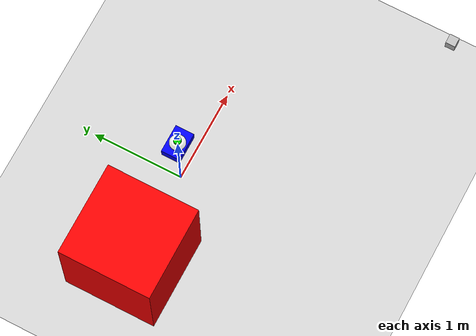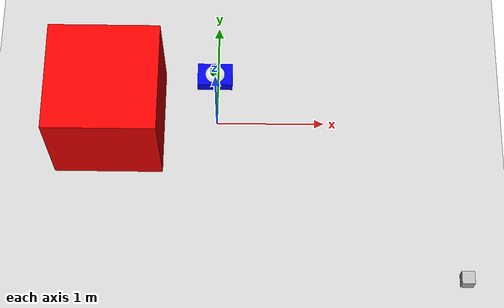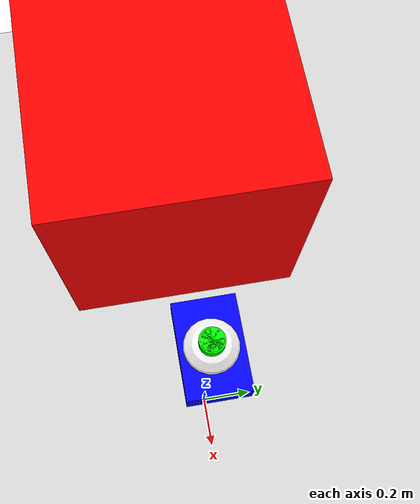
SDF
<?xml version="1.0" ?>
<sdf version="1.7">
  <world name="simple_humanoid_world">
    <!-- Include a ground plane -->
    <include>
      <uri>model://ground_plane</uri>
    </include>

    <!-- Include a sun -->
    <include>
      <uri>model://sun</uri>
    </include>

    <!-- Add physics engine -->
    <physics name="1ms" type="ode">
      <max_step_size>0.001</max_step_size>
      <real_time_factor>1.0</real_time_factor>
      <real_time_update_rate>1000.0</real_time_update_rate>
    </physics>

    <!-- Place the simple humanoid model -->
    <include>
      <name>simple_humanoid</name>
      <uri>model://simple_humanoid</uri>
      <pose>0 0 1 0 0 0</pose>
    </include>

    <!-- Add a simple camera sensor -->
    <model name="camera_sensor">
      <pose>2 -2 1.5 0 0 1.57</pose>
      <link name="camera_link">
        <pose>0.05 0 0 0 0 0</pose>
        <visual name="visual">
          <geometry>
            <box>
              <size>0.1 0.1 0.1</size>
            </box>
          </geometry>
        </visual>
        <sensor name="camera" type="camera">
          <camera name="cam">
            <horizontal_fov>1.047</horizontal_fov>
            <image>
              <width>640</width>
              <height>480</height>
            </image>
            <clip>
              <near>0.1</near>
              <far>100</far>
            </clip>
          </camera>
        </sensor>
      </link>
    </model>

    <!-- Add a simple cube for reference -->
    <model name="reference_cube">
      <pose>-1 0 0.5 0 0 0</pose>
      <link name="cube_link">
        <collision name="collision">
          <geometry>
            <box>
              <size>1 1 1</size>
            </box>
          </geometry>
        </collision>
        <visual name="visual">
          <geometry>
            <box>
              <size>1 1 1</size>
            </box>
          </geometry>
          <material>
            <ambient>1 0 0 1</ambient>
            <diffuse>1 0 0 1</diffuse>
          </material>
        </visual>
        <inertial>
          <mass>1.0</mass>
          <inertia>
            <ixx>0.166667</ixx>
            <ixy>0</ixy>
            <ixz>0</ixz>
            <iyy>0.166667</iyy>
            <iyz>0</iyz>
            <izz>0.166667</izz>
          </inertia>
        </inertial>
      </link>
    </model>

  </world>
</sdf>

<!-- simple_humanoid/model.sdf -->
<sdf version="1.7">
  <model name="simple_humanoid">
    <!-- Base Link -->
    <link name="base_link">
      <visual name="base_visual">
        <geometry>
          <box>
            <size>0.3 0.2 0.1</size>
          </box>
        </geometry>
        <material>
          <ambient>0 0 1 1</ambient>
          <diffuse>0 0 1 1</diffuse>
        </material>
      </visual>
      <collision name="base_collision">
        <geometry>
          <box>
            <size>0.3 0.2 0.1</size>
          </box>
        </geometry>
      </collision>
      <inertial>
        <mass>5.0</mass>
        <inertia>
          <ixx>0.1</ixx>
          <ixy>0.0</ixy>
          <ixz>0.0</ixz>
          <iyy>0.1</iyy>
          <iyz>0.0</iyz>
          <izz>0.1</izz>
        </inertia>
      </inertial>
    </link>

    <!-- Head -->
    <link name="head">
      <visual name="head_visual">
        <geometry>
          <sphere>
            <radius>0.1</radius>
          </sphere>
        </geometry>
        <material>
          <ambient>1 1 1 1</ambient>
          <diffuse>1 1 1 1</diffuse>
        </material>
      </visual>
      <collision name="head_collision">
        <geometry>
          <sphere>
            <radius>0.1</radius>
          </sphere>
        </geometry>
      </collision>
      <inertial>
        <mass>1.0</mass>
        <inertia>
          <ixx>0.001</ixx>
          <ixy>0.0</ixy>
          <ixz>0.0</ixz>
          <iyy>0.001</iyy>
          <iyz>0.0</iyz>
          <izz>0.001</izz>
        </inertia>
      </inertial>
    </link>

    <joint name="head_joint" type="fixed">
      <parent>base_link</parent>
      <child>head</child>
      <pose>0 0 0.15 0 0 0</pose>
    </joint>

    <!-- Left Arm -->
    <link name="left_upper_arm">
      <visual name="left_upper_arm_visual">
        <geometry>
          <cylinder>
            <length>0.2</length>
            <radius>0.03</radius>
          </cylinder>
        </geometry>
        <material>
          <ambient>1 0 0 1</ambient>
          <diffuse>1 0 0 1</diffuse>
        </material>
      </visual>
      <collision name="left_upper_arm_collision">
        <geometry>
          <cylinder>
            <length>0.2</length>
            <radius>0.03</radius>
          </cylinder>
        </geometry>
      </collision>
      <inertial>
        <mass>0.5</mass>
        <inertia>
          <ixx>0.001</ixx>
          <ixy>0.0</ixy>
          <ixz>0.0</ixz>
          <iyy>0.001</iyy>
          <iyz>0.0</iyz>
          <izz>0.001</izz>
        </inertia>
      </inertial>
    </link>

    <joint name="left_shoulder_joint" type="revolute">
      <parent>base_link</parent>
      <child>left_upper_arm</child>
      <pose>0.18 0.1 0 0 0 0</pose>
      <axis>
        <xyz>0 1 0</xyz>
        <limit>
          <lower>-1.57</lower>
          <upper>1.57</upper>
        </limit>
      </axis>
    </joint>

    <link name="left_lower_arm">
      <visual name="left_lower_arm_visual">
        <geometry>
          <cylinder>
            <length>0.15</length>
            <radius>0.025</radius>
          </cylinder>
        </geometry>
        <material>
          <ambient>1 0 0 1</ambient>
          <diffuse>1 0 0 1</diffuse>
        </material>
      </visual>
      <collision name="left_lower_arm_collision">
        <geometry>
          <cylinder>
            <length>0.15</length>
            <radius>0.025</radius>
          </cylinder>
        </geometry>
      </collision>
      <inertial>
        <mass>0.3</mass>
        <inertia>
          <ixx>0.001</ixx>
          <ixy>0.0</ixy>
          <ixz>0.0</ixz>
          <iyy>0.001</iyy>
          <iyz>0.0</iyz>
          <izz>0.001</izz>
        </inertia>
      </inertial>
    </link>

    <joint name="left_elbow_joint" type="revolute">
      <parent>left_upper_arm</parent>
      <child>left_lower_arm</child>
      <pose>0 0 -0.175 0 0 0</pose>
      <axis>
        <xyz>0 1 0</xyz>
        <limit>
          <lower>-1.57</lower>
          <upper>1.57</upper>
        </limit>
      </axis>
    </joint>

    <!-- Right Arm -->
    <link name="right_upper_arm">
      <visual name="right_upper_arm_visual">
        <geometry>
          <cylinder>
            <length>0.2</length>
            <radius>0.03</radius>
          </cylinder>
        </geometry>
        <material>
          <ambient>1 0 0 1</ambient>
          <diffuse>1 0 0 1</diffuse>
        </material>
      </visual>
      <collision name="right_upper_arm_collision">
        <geometry>
          <cylinder>
            <length>0.2</length>
            <radius>0.03</radius>
          </cylinder>
        </geometry>
      </collision>
      <inertial>
        <mass>0.5</mass>
        <inertia>
          <ixx>0.001</ixx>
          <ixy>0.0</ixy>
          <ixz>0.0</ixz>
          <iyy>0.001</iyy>
          <iyz>0.0</iyz>
          <izz>0.001</izz>
        </inertia>
      </inertial>
    </link>

    <joint name="right_shoulder_joint" type="revolute">
      <parent>base_link</parent>
      <child>right_upper_arm</child>
      <pose>0.18 -0.1 0 0 0 0</pose>
      <axis>
        <xyz>0 1 0</xyz>
        <limit>
          <lower>-1.57</lower>
          <upper>1.57</upper>
        </limit>
      </axis>
    </joint>

    <link name="right_lower_arm">
      <visual name="right_lower_arm_visual">
        <geometry>
          <cylinder>
            <length>0.15</length>
            <radius>0.025</radius>
          </cylinder>
        </geometry>
        <material>
          <ambient>1 0 0 1</ambient>
          <diffuse>1 0 0 1</diffuse>
        </material>
      </visual>
      <collision name="right_lower_arm_collision">
        <geometry>
          <cylinder>
            <length>0.15</length>
            <radius>0.025</radius>
          </cylinder>
        </geometry>
      </collision>
      <inertial>
        <mass>0.3</mass>
        <inertia>
          <ixx>0.001</ixx>
          <ixy>0.0</ixy>
          <ixz>0.0</ixz>
          <iyy>0.001</iyy>
          <iyz>0.0</iyz>
          <izz>0.001</izz>
        </inertia>
      </inertial>
    </link>

    <joint name="right_elbow_joint" type="revolute">
      <parent>right_upper_arm</parent>
      <child>right_lower_arm</child>
      <pose>0 0 -0.175 0 0 0</pose>
      <axis>
        <xyz>0 1 0</xyz>
        <limit>
          <lower>-1.57</lower>
          <upper>1.57</upper>
        </limit>
      </axis>
    </joint>

    <!-- Left Leg -->
    <link name="left_upper_leg">
      <visual name="left_upper_leg_visual">
        <geometry>
          <cylinder>
            <length>0.25</length>
            <radius>0.04</radius>
          </cylinder>
        </geometry>
        <material>
          <ambient>0 1 0 1</ambient>
          <diffuse>0 1 0 1</diffuse>
        </material>
      </visual>
      <collision name="left_upper_leg_collision">
        <geometry>
          <cylinder>
            <length>0.25</length>
            <radius>0.04</radius>
          </cylinder>
        </geometry>
      </collision>
      <inertial>
        <mass>0.8</mass>
        <inertia>
          <ixx>0.002</ixx>
          <ixy>0.0</ixy>
          <ixz>0.0</ixz>
          <iyy>0.002</iyy>
          <iyz>0.0</iyz>
          <izz>0.002</izz>
        </inertia>
      </inertial>
    </link>

    <joint name="left_hip_joint" type="revolute">
      <parent>base_link</parent>
      <child>left_upper_leg</child>
      <pose>-0.1 -0.05 -0.05 0 0 0</pose>
      <axis>
        <xyz>0 1 0</xyz>
        <limit>
          <lower>-1.57</lower>
          <upper>1.57</upper>
        </limit>
      </axis>
    </joint>

    <link name="left_lower_leg">
      <visual name="left_lower_leg_visual">
        <geometry>
          <cylinder>
            <length>0.25</length>
            <radius>0.035</radius>
          </cylinder>
        </geometry>
        <material>
          <ambient>0 1 0 1</ambient>
          <diffuse>0 1 0 1</diffuse>
        </material>
      </visual>
      <collision name="left_lower_leg_collision">
        <geometry>
          <cylinder>
            <length>0.25</length>
            <radius>0.035</radius>
          </cylinder>
        </geometry>
      </collision>
      <inertial>
        <mass>0.6</mass>
        <inertia>
          <ixx>0.002</ixx>
          <ixy>0.0</ixy>
          <ixz>0.0</ixz>
          <iyy>0.002</iyy>
          <iyz>0.0</iyz>
          <izz>0.002</izz>
        </inertia>
      </inertial>
    </link>

    <joint name="left_knee_joint" type="revolute">
      <parent>left_upper_leg</parent>
      <child>left_lower_leg</child>
      <pose>0 0 -0.2 0 0 0</pose>
      <axis>
        <xyz>0 1 0</xyz>
        <limit>
          <lower>-1.57</lower>
          <upper>1.57</upper>
        </limit>
      </axis>
    </joint>

    <!-- Right Leg -->
    <link name="right_upper_leg">
      <visual name="right_upper_leg_visual">
        <geometry>
          <cylinder>
            <length>0.25</length>
            <radius>0.04</radius>
          </cylinder>
        </geometry>
        <material>
          <ambient>0 1 0 1</ambient>
          <diffuse>0 1 0 1</diffuse>
        </material>
      </visual>
      <collision name="right_upper_leg_collision">
        <geometry>
          <cylinder>
            <length>0.25</length>
            <radius>0.04</radius>
          </cylinder>
        </geometry>
      </collision>
      <inertial>
        <mass>0.8</mass>
        <inertia>
          <ixx>0.002</ixx>
          <ixy>0.0</ixy>
          <ixz>0.0</ixz>
          <iyy>0.002</iyy>
          <iyz>0.0</iyz>
          <izz>0.002</izz>
        </inertia>
      </inertial>
    </link>

    <joint name="right_hip_joint" type="revolute">
      <parent>base_link</parent>
      <child>right_upper_leg</child>
      <pose>-0.1 0.05 -0.05 0 0 0</pose>
      <axis>
        <xyz>0 1 0</xyz>
        <limit>
          <lower>-1.57</lower>
          <upper>1.57</upper>
        </limit>
      </axis>
    </joint>

    <link name="right_lower_leg">
      <visual name="right_lower_leg_visual">
        <geometry>
          <cylinder>
            <length>0.25</length>
            <radius>0.035</radius>
          </cylinder>
        </geometry>
        <material>
          <ambient>0 1 0 1</ambient>
          <diffuse>0 1 0 1</diffuse>
        </material>
      </visual>
      <collision name="right_lower_leg_collision">
        <geometry>
          <cylinder>
            <length>0.25</length>
            <radius>0.035</radius>
          </cylinder>
        </geometry>
      </collision>
      <inertial>
        <mass>0.6</mass>
        <inertia>
          <ixx>0.002</ixx>
          <ixy>0.0</ixy>
          <ixz>0.0</ixz>
          <iyy>0.002</iyy>
          <iyz>0.0</iyz>
          <izz>0.002</izz>
        </inertia>
      </inertial>
    </link>

    <joint name="right_knee_joint" type="revolute">
      <parent>right_upper_leg</parent>
      <child>right_lower_leg</child>
      <pose>0 0 -0.2 0 0 0</pose>
      <axis>
        <xyz>0 1 0</xyz>
        <limit>
          <lower>-1.57</lower>
          <upper>1.57</upper>
        </limit>
      </axis>
    </joint>

  </model>
</sdf>
